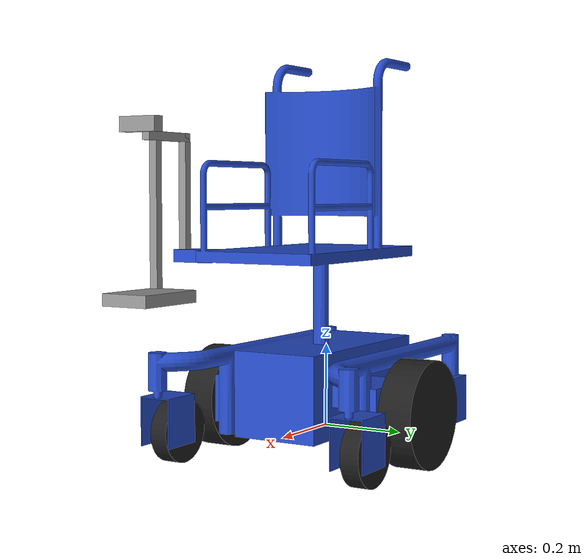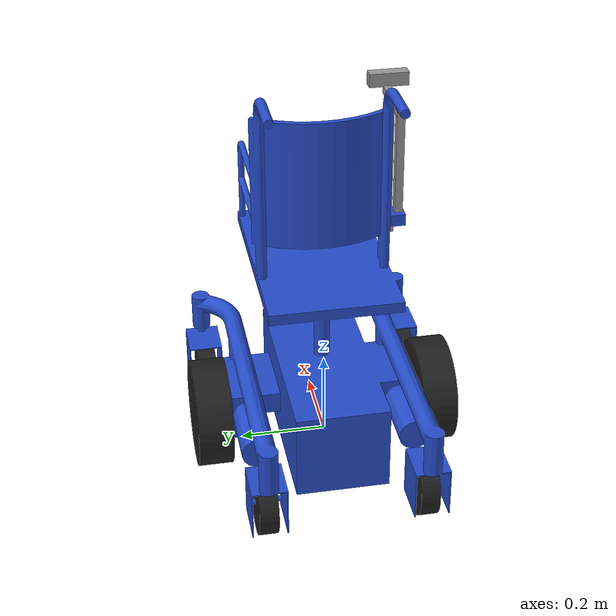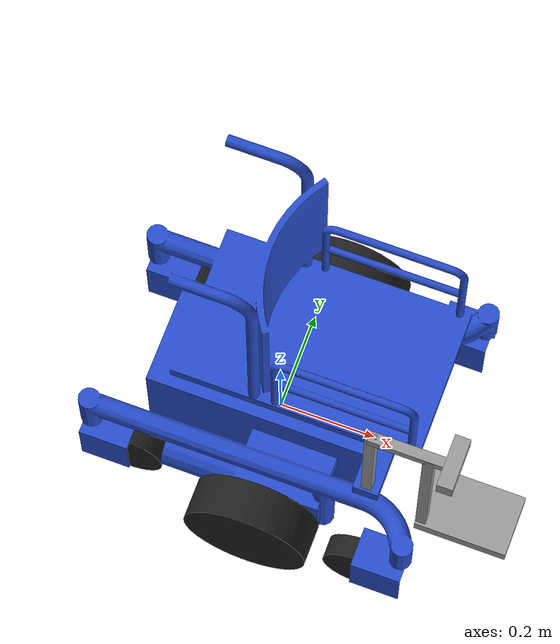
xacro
<?xml version="1.0" encoding="utf-8"?>

<robot xmlns:xacro="http://www.ros.org/wiki/xacro" >

  <!-- body frame dimensions -->
	<xacro:property name="body_length_x" value="0.86"/>
	<xacro:property name="body_width_y" value="0.47"/>
	<xacro:property name="body_height_z" value="0.70"/>
	<xacro:property name="mass_body" value="136"/>

<!-- front wheel dimensions -->
	<xacro:property name="frontwheel_radius" value="0.0750"/>
        <xacro:property name="frontwheel_thickness" value="0.07"/>
        <xacro:property name="frontwheel_mass" value="1.2"/>

        <!-- front wheel dimensions -->
	<xacro:property name="backwheel_radius" value="0.075"/>
        <xacro:property name="backwheel_thickness" value="0.07"/>
        <xacro:property name="backwheel_mass" value="1.2"/>

<!-- rear wheel dimensions -->
        <xacro:property name="rearwheel_radius" value="0.125"/>
        <xacro:property name="rearwheel_thickness" value="0.07"/>
        <xacro:property name="rearwheel_mass" value="4"/>

          <!-- add dimensions -->
	<xacro:property name="add_length_x" value="0.03"/>
	<xacro:property name="add_width_y" value="0.15"/>
	<xacro:property name="add_height_z" value="0.2"/>
	<xacro:property name="mass_add" value="1"/>

        <xacro:property name="add2_length_x" value="0.25"/>
	<xacro:property name="add2_width_y" value="0.12"/>

	<xacro:property name="add2_height_z" value="0.028"/>
	<xacro:property name="mass_add2" value="0.6"/>

        <xacro:property name="dist_c1" value="${body_height_z/2+rearwheel_radius}"/>
        <xacro:property name="dist_c2" value="${2*rearwheel_radius}"/>
        <xacro:property name="dist_c3" value="${2*rearwheel_radius}"/>
        <xacro:property name="dist_c4" value="${body_width_y/2+rearwheel_thickness/2}"/>

          <!-- add dimensions -->
	<xacro:property name="add_length_x" value="0.03"/>
	<xacro:property name="add_width_y" value="0.1"/>
	<xacro:property name="add_height_z" value="0.035"/>
	<xacro:property name="mass_add" value="0.05"/>

	<xacro:property name="add2_length_x" value="0.18"/>
	<xacro:property name="add2_width_y" value="0.12"/>

	<xacro:property name="add2_height_z" value="0.028"/>
	<xacro:property name="mass_add2" value="0.05"/>

	<xacro:property name="Ix_add" value="${(1/12)*mass_add*(add_height_z*add_height_z+add_width_y*add_width_y)}"/>
 	<xacro:property name="Iy_add" value="${(1/12)*mass_add*(add_length_x*add_length_x+add_height_z*add_height_z)}"/>
 	<xacro:property name="Iz_add" value="${(1/12)*mass_add*(add_length_x*add_length_x+add_width_y*add_width_y)}"/>

        <xacro:macro name="body_inertia">
        	<inertial>
        	<origin rpy="0 0 0" xyz="0.0163303801588438 -5.46419109479917E-07 -0.170596913460358"/>
        	<mass value="35.8441018444197" />
                <inertia ixx="0.26145346409584" ixy="4.4310329204097E-07" ixz="-0.00292775899478097" iyy="0.81344516219653" iyz="1.63291857463246E-07" izz="0.811360816738177" />
        	</inertial>
        </xacro:macro>

        <xacro:macro name="leftrearwheel_inertia">
        	<inertial>
        	<origin rpy="0 0 0" xyz="-1.3878E-17 0.042001 0"/>
        	<mass value="4.2215" />
                <inertia ixx="0.019503" ixy="3.621E-20" ixz="1.3894E-18"
                    iyy="0.033736" iyz="5.5453E-19"
                    izz="0.019503" />
        	</inertial>
        </xacro:macro>

        <xacro:macro name="rightrearwheel_inertia">
        	<inertial>
        	<origin rpy="0 0 0" xyz="-1.3878E-17 -0.042001 0"/>
        	<mass value="4.2215" />
                <inertia ixx="0.019503" ixy="-5.7044E-19" ixz="-2.7982E-18"
                    iyy="0.033736" iyz="8.5892E-19"
                    izz="0.019503" />
        	</inertial>
        </xacro:macro>

        <xacro:macro name="leftfrontwheel_inertia">
        	<inertial>
        	<origin rpy="0 0 0" xyz="2.7756E-17 0.022225 0"/>
        	<mass value="0.8052" />
                <inertia ixx="0.0013095" ixy="0.0" ixz="-8.6712E-40"
                    iyy="0.0023539" iyz="-2.6721E-36"
                    izz="0.0013095" />
        	</inertial>
        </xacro:macro>

        <xacro:macro name="leftbackwheel_inertia">
        	<inertial>
        	<origin rpy="0 0 0" xyz="5.5511E-17 0.022225 -4.1633E-17"/>
        	<mass value="0.8052" />
                <inertia ixx="0.0013095" ixy="-1.7257E-21" ixz="-1.3367E-34"
                    iyy="0.0023539" iyz="-1.2373E-18"
                    izz="0.0013095" />
        	</inertial>
        </xacro:macro>

        <xacro:macro name="rightfrontwheel_inertia">
        	<inertial>
        	<origin rpy="0 0 0" xyz="2.7756E-17 -0.022225 0"/>
        	<mass value="0.8052" />
                <inertia ixx="0.0013095" ixy="0.0" ixz="-8.6712E-40"
                    iyy="0.0023539" iyz="-2.6721E-36"
                    izz="0.0013095" />
        	</inertial>
        </xacro:macro>

        <xacro:macro name="rightbackwheel_inertia">
        	<inertial>
        	<origin rpy="0 0 0" xyz="5.5511E-17 -0.022225 -4.1633E-17"/>
        	<mass value="0.8052" />
                <inertia ixx="0.0013095" ixy="-1.7257E-21" ixz="1.492E-34"
                    iyy="0.0023539" iyz="1.2373E-18"
                    izz="0.0013095" />
        	</inertial>
        </xacro:macro>

        <xacro:macro name="add_inertia">
        	<inertial>
        	<origin rpy="0 0 0" xyz="0 0 0"/>
        	<mass value="${mass_add}" />
                <inertia ixx="${Ix_add}" ixy="0.0" ixz="0.0"
                    iyy="${Iy_add}" iyz="0.0"
                    izz="${Iz_add}" />
        	</inertial>
        </xacro:macro>

        <gazebo reference="body_frame">
             <mu1>4</mu1>
	     <mu2>4</mu2>
		<material>Gazebo/Blue</material>
	</gazebo>

	<gazebo reference="left_rearwheel">
              <mu1>1.8</mu1>
	      <mu2>1.8</mu2>
		<material>Gazebo/Black</material>
	</gazebo>

	<gazebo reference="right_rearwheel">
              <mu1>1.8</mu1>
	      <mu2>1.8</mu2>
		<material>Gazebo/Black</material>
	</gazebo>

        <gazebo reference="left_frontwheel">
        	<material>Gazebo/Black</material>
        	<mu1>0.72</mu1>
        	<mu2>0.72</mu2>
    	</gazebo>

    	<gazebo reference="right_frontwheel">
        	<material>Gazebo/Black</material>
        	<mu1>0.72</mu1>
        	<mu2>0.72</mu2>
    	</gazebo>

    	<gazebo reference="left_backwheel">
        	<material>Gazebo/Black</material>
        	<mu1>0.72</mu1>
        	<mu2>0.72</mu2>
    	</gazebo>

    	<gazebo reference="right_backwheel">
        	<material>Gazebo/Black</material>
        	<mu1>0.72</mu1>
        	<mu2>0.72</mu2>
    	</gazebo>

    	<gazebo reference="add">
        	<material>Gazebo/Grey</material>
    	</gazebo>
    	<gazebo reference="add2">
        	<material>Gazebo/Grey</material>
    	</gazebo>
    	<gazebo reference="add3">
        	<material>Gazebo/Blue</material>
    	</gazebo>
    	<gazebo reference="add4">
        	<material>Gazebo/Grey</material>
    	</gazebo>
    	<gazebo reference="add5">
        	<material>Gazebo/Grey</material>
    	</gazebo>
    	<gazebo reference="add6">
        	<material>Gazebo/Grey</material>
    	</gazebo>

    	 <link name="base_link">

        </link>

        <!-- ROBOT_FOOTPRINT LINK -->

        <joint name="robot_footprint_joint" type="fixed">
        	<parent link="base_link"/>
        	<child link="robot_footprint"/>
        	<origin xyz="0 0 0" rpy="0 0 0"/>
    	</joint>

    	<link name="robot_footprint">
    	</link>

    	<joint name="baselink_to_bodyframe" type="fixed">
    		<parent link="base_link" />
  		<child link="body_frame" />
  		<origin xyz="0 0 0" rpy="3.14159 0 0"/>
  	</joint>

  	<!-- Body frame LINK -->
  	<link name="body_frame">
  		<visual>
  			<geometry>
  			        <mesh filename="package://my_robot/meshes/bodyframe.STL"/>
  			</geometry>
  		<origin rpy="0 0 0" xyz="0 0 0"/>
  		</visual>

  		<collision>
  			<geometry>
  			        <mesh filename="package://my_robot/meshes/bodyframe.STL"/>
  			</geometry>
  		<origin rpy="0 0 0" xyz="0 0 0"/>
  		</collision>

  		<xacro:body_inertia />
  	</link>

  	<joint name="right_rearwheel_joint" type="continuous">
        	<parent link="body_frame"/>
        	<child link="right_rearwheel"/>
        	<origin xyz="0.0381 0.31115 -0.05715" rpy="0 0 0" />  <!-- Defined wrt to he coordinate of the base link -->
        	<axis xyz="0 -1 0"/>
        	<limit effort="1000" velocity="1000"/>
                <dynamics damping="1.0" friction="1.0"/>
         </joint>

      <!-- Right rear wheel link -->

       <link name="right_rearwheel">
  		<visual>
  			<origin rpy="0 0 0" xyz="0 0 0" />
  			<geometry>
  			        <mesh filename="package://my_robot/meshes/rightdrivenwheel_link.STL"/>
  			</geometry>
  		</visual>

  		<collision>
  			<origin rpy="0 0 0" xyz="0 0 0" />
  			<geometry>
  			        <mesh filename="package://my_robot/meshes/rightdrivenwheel_link.STL"/>
  			</geometry>
  		</collision>

  		<xacro:rightrearwheel_inertia />
  	</link>

  	<joint name="left_rearwheel_joint" type="continuous">
        	<parent link="body_frame"/>
        	<child link="left_rearwheel"/>
        	<origin xyz="0.0381 -0.31115 -0.05715" rpy="0 0 0" />  <!-- Defined wrt to the coordinate of the base link -->
        	<axis xyz="0 -1 0"/>
        	<limit effort="1000" velocity="1000"/>
                <dynamics damping="1.0" friction="1.0"/>
       </joint>

       <!-- Left rear wheel link -->

       <link name="left_rearwheel">
  		<visual>
  			<origin rpy="0 0 0" xyz="0 0 0" />
  			<geometry>
  			        <mesh filename="package://my_robot/meshes/leftdrivenwheel_link.STL"/>
  			</geometry>
  		</visual>

  		<collision>
  			<origin rpy="0 0 0" xyz="0 0 0" />
  			<geometry>
  			        <mesh filename="package://my_robot/meshes/leftdrivenwheel_link.STL"/>
  			</geometry>
  		</collision>

  		<xacro:leftrearwheel_inertia />
  	</link>

       <!-- Left front wheel joint-->
       <joint name="left_frontwheel_joint" type="fixed">
        	<parent link="body_frame"/>
        	<child link="left_frontwheel"/>
        	<origin xyz="0.2667 -0.27622 -0.00635" rpy="0 0 0" />
    	</joint>

    	<!-- Left front wheel link -->
    	<link name="left_frontwheel">
  		<visual>
  			<origin rpy="0 0 0" xyz="0 0 0" />
  			<geometry>
  			        <mesh filename="package://my_robot/meshes/frontleftcastor_link.STL"/>
  			</geometry>
  		</visual>

  		<collision>
  			<origin rpy="0 0 0" xyz="0 0 0" />
  			<geometry>
  			        <mesh filename="package://my_robot/meshes/frontleftcastor_link.STL"/>
  			</geometry>
  		</collision>

  		<xacro:leftfrontwheel_inertia />
  	</link>

  	<!-- Right front wheel joint-->
       <joint name="right_frontwheel_joint" type="fixed">
        	<parent link="body_frame"/>
        	<child link="right_frontwheel"/>
        	<origin xyz="0.2667 0.27622 -0.00635" rpy="0 0 0" />
    	</joint>

    	<!-- Right front wheel link -->
    	<link name="right_frontwheel">
  		<visual>
  			<origin rpy="0 0 0" xyz="0 0 0" />
  			<geometry>
  			        <mesh filename="package://my_robot/meshes/frontrightcastor_link.STL"/>
  			</geometry>
  		</visual>

  		<collision>
  			<origin rpy="0 0 0" xyz="0 0 0" />
  			<geometry>
  			        <mesh filename="package://my_robot/meshes/frontrightcastor_link.STL"/>
  			</geometry>
  		</collision>

  		<xacro:rightfrontwheel_inertia />
  	</link>

  	 <!-- Left back caster wheel joint-->
       <joint name="left_backwheel_joint" type="fixed">
        	<parent link="body_frame"/>
        	<child link="left_backwheel"/>
        	<origin xyz="-0.254 -0.20637 -0.00635" rpy="0 0 0" />
    	</joint>

    	<!-- Left front wheel link -->
    	<link name="left_backwheel">
  		<visual>
  			<origin rpy="0 0 0" xyz="0 0 0" />
  			<geometry>
  			        <mesh filename="package://my_robot/meshes/backleftcastor_link.STL"/>
  			</geometry>
  		</visual>

  		<collision>
  			<origin rpy="0 0 0" xyz="0 0 0" />
  			<geometry>
  			        <mesh filename="package://my_robot/meshes/backleftcastor_link.STL"/>
  			</geometry>
  		</collision>

  		<xacro:leftbackwheel_inertia />
  	</link>

  	<!-- Right back wheel joint-->
       <joint name="right_backwheel_joint" type="fixed">
        	<parent link="body_frame"/>
        	<child link="right_backwheel"/>
        	<origin xyz="-0.254 0.20637 -0.00635" rpy="0 0 0" />
    	</joint>

    	<!-- Right front wheel link -->
    	<link name="right_backwheel">
  		<visual>
  			<origin rpy="0 0 0" xyz="0 0 0" />
  			<geometry>
  			        <mesh filename="package://my_robot/meshes/backrightcastor_link.STL"/>
  			</geometry>
  		</visual>

  		<collision>
  			<origin rpy="0 0 0" xyz="0 0 0" />
  			<geometry>
  			        <mesh filename="package://my_robot/meshes/backrightcastor_link.STL"/>
  			</geometry>
  		</collision>

  		<xacro:rightbackwheel_inertia />
  	</link>

  	<joint name="baselink_to_add" type="fixed">
    		<parent link="base_link" />
  		<child link="add" />
  		<origin rpy="0 0 0" xyz="0.415 -0.24 0.725"/>
  	</joint>

        <link name="add">
         <visual>
  	     <geometry>
  	          <box size="${add_length_x} ${add_width_y} ${add_height_z}" />
  	     </geometry>

         </visual>

         <collision>
  	     <geometry>
  	          <box size="${add_length_x} ${add_width_y} ${add_height_z}" />
  	     </geometry>

         </collision>

         <xacro:add_inertia />
       </link>

       <joint name="baselink_to_add2" type="fixed">
    		<parent link="base_link" />
  		<child link="add2" />
  		<origin rpy="0 0 0" xyz="0.45 -0.19 0.338"/>
  	</joint>

        <link name="add2">
         <visual>
  	     <geometry>
  	          <box size="${add2_length_x} ${add2_width_y} ${add2_height_z}" />
  	     </geometry>

         </visual>

         <collision>
  	     <geometry>
  	          <box size="${add2_length_x} ${add2_width_y} ${add2_height_z}" />
  	     </geometry>

         </collision>

         <xacro:add_inertia />
       </link>

       <joint name="baselink_to_add3" type="fixed">
    		<parent link="base_link" />
  		<child link="add3" />
  		<origin rpy="0 0 0" xyz="0.26 -0.20 0.423"/>
  	</joint>

        <link name="add3">
         <visual>
  	     <geometry>
  	          <box size="0.05 0.1 0.03" />
  	     </geometry>

         </visual>

         <collision>
  	     <geometry>
  	          <box size="0.05 0.1 0.03" />
  	     </geometry>

         </collision>

         <xacro:add_inertia />
       </link>

       <joint name="baselink_to_add4" type="fixed">
    		<parent link="base_link" />
  		<child link="add4" />
  		<origin rpy="0 0 0" xyz="0.26 -0.235 0.56"/>
  	</joint>

        <link name="add4">
         <visual>
  	     <geometry>
  	          <box size="0.02 0.02 0.3" />
  	     </geometry>

         </visual>

         <collision>
  	     <geometry>
  	          <box size="0.02 0.02 0.3" />
  	     </geometry>

         </collision>

         <xacro:add_inertia />
       </link>

       <joint name="baselink_to_add5" type="fixed">
    		<parent link="base_link" />
  		<child link="add5" />
  		<origin rpy="0 1.570795 0" xyz="0.33 -0.235 0.7"/>
  	</joint>

        <link name="add5">
         <visual>
  	     <geometry>
  	          <box size="0.02 0.02 0.15" />
  	     </geometry>

         </visual>

         <collision>
  	     <geometry>
  	          <box size="0.02 0.02 0.15" />
  	     </geometry>

         </collision>

         <xacro:add_inertia />
       </link>

        <joint name="baselink_to_add6" type="fixed">
    		<parent link="base_link" />
  		<child link="add6" />
  		<origin rpy="0 0 0" xyz="0.37 -0.235 0.52"/>
  	</joint>

        <link name="add6">
         <visual>
  	     <geometry>
  	          <box size="0.02 0.02 0.37" />
  	     </geometry>

         </visual>

         <collision>
  	     <geometry>
  	          <box size="0.02 0.02 0.37" />
  	     </geometry>

         </collision>

         <xacro:add_inertia />
       </link>

</robot>
